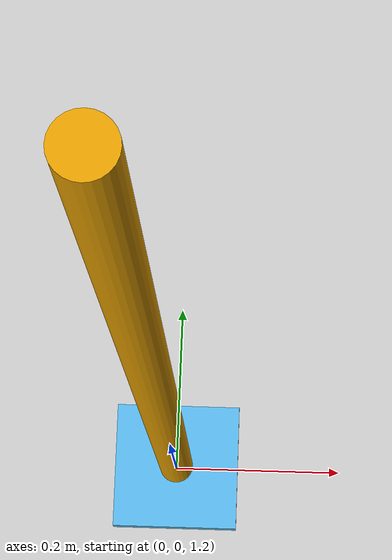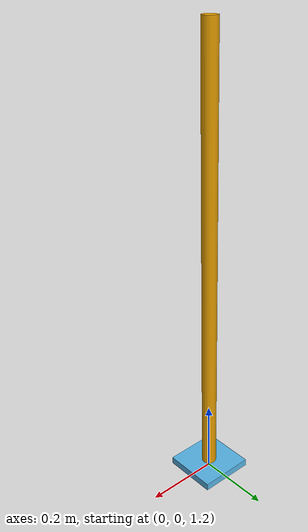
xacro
<?xml version="1.0"?>
<robot name="vertical_stick"
       xmlns:xi="http://www.w3.org/2001/XInclude"
       xmlns:gazebo="http://playerstage.sourceforge.net/gazebo/xmlschema/#gz"
       xmlns:model="http://playerstage.sourceforge.net/gazebo/xmlschema/#model"
       xmlns:sensor="http://playerstage.sourceforge.net/gazebo/xmlschema/#sensor"
       xmlns:body="http://playerstage.sourceforge.net/gazebo/xmlschema/#body"
       xmlns:geom="http://playerstage.sourceforge.net/gazebo/xmlschema/#geom"
       xmlns:joint="http://playerstage.sourceforge.net/gazebo/xmlschema/#joint"
       xmlns:interface="http://playerstage.sourceforge.net/gazebo/xmlschema/#interface"
       xmlns:rendering="http://playerstage.sourceforge.net/gazebo/xmlschema/#rendering"
       xmlns:renderable="http://playerstage.sourceforge.net/gazebo/xmlschema/#renderable"
       xmlns:controller="http://playerstage.sourceforge.net/gazebo/xmlschema/#controller"
       xmlns:physics="http://playerstage.sourceforge.net/gazebo/xmlschema/#physics">

  <xacro:property name="vertical_stick_z" value="0.0" />
  <xacro:property name="vertical_stick_height" value="0.55" />

  <xacro:property name="vertical_stick_x" value="0.0" />
  <xacro:property name="vertical_stick_y" value="0.0" />

  <xacro:property name="vertical_stick_height"      value="1.2" />
  <xacro:property name="vertical_stick_radius"      value="0.02" />
  <xacro:property name="vertical_stick_base_height" value="0.02" />
  <xacro:property name="vertical_stick_base_width"  value="0.15" />
  <xacro:property name="vertical_stick_mass"        value="0.2" />
  <xacro:property name="vertical_stick_mu"          value="500.0" />
  <joint name="vertical_stick_joint" type="fixed" >
    <parent link="vertical_stick_base_link" />
    <origin xyz="${vertical_stick_x} ${vertical_stick_y} ${vertical_stick_z+vertical_stick_height+vertical_stick_base_height}" rpy="0 0 0" />
    <child link="vertical_stick_link" />
  </joint>
  <link name="vertical_stick_link">
    <inertial>
      <mass value="${vertical_stick_mass/2.0}" />
      <origin xyz="0 0 ${vertical_stick_height/2}" />
      <inertia ixx="${vertical_stick_mass/20.0}" ixy="0"  ixz="0"
               iyy="${vertical_stick_mass/20.0}" iyz="0"
               izz="${vertical_stick_mass/200.}" />
    </inertial>
    <visual>
      <origin xyz="0.0 0.0 ${vertical_stick_height/2}" rpy="0 0 0" />
      <geometry>
        <cylinder radius="${vertical_stick_radius}" length="${vertical_stick_height}" />
      </geometry>
    </visual>
    <collision>
      <origin xyz="0.0 0.0 ${vertical_stick_height/2}" rpy="0.0 0.0 0.0" />
      <geometry>
        <cylinder radius="${vertical_stick_radius}" length="${vertical_stick_height}" />
      </geometry>
    </collision>
  </link>
  <gazebo reference="vertical_stick_link">
    <material>Gazebo/BumpyMetal</material>
    <mu1>${vertical_stick_mu}</mu1>
    <mu2>${vertical_stick_mu}</mu2>
    <kp>100000000.0</kp>
    <kd>1.0</kd>
    <selfCollide>true</selfCollide>
    <turnGravityOff>false</turnGravityOff>
    <dampingFactor>0.001</dampingFactor>
  </gazebo>

  <link name="vertical_stick_base_link">
    <inertial>
      <mass value="${vertical_stick_mass/2.0}" />
      <origin xyz="${vertical_stick_x} ${vertical_stick_y} ${vertical_stick_z+vertical_stick_height+vertical_stick_base_height/2}" rpy="0 0 0" />
      <inertia ixx="${vertical_stick_mass/20.0}" ixy="0"  ixz="0"
               iyy="${vertical_stick_mass/20.0}" iyz="0"
               izz="${vertical_stick_mass/200.}" />
    </inertial>
    <visual>
      <origin xyz="${vertical_stick_x} ${vertical_stick_y} ${vertical_stick_z+vertical_stick_height+vertical_stick_base_height/2}" rpy="0 0 0" />
      <geometry>
        <box size="${vertical_stick_base_width} ${vertical_stick_base_width} ${vertical_stick_base_height}" />
      </geometry>
    </visual>
    <collision>
      <origin xyz="${vertical_stick_x} ${vertical_stick_y} ${vertical_stick_z+vertical_stick_height+vertical_stick_base_height/2}" rpy="0 0 0" />
      <geometry>
        <box size="${vertical_stick_base_width} ${vertical_stick_base_width} ${vertical_stick_base_height}" />
      </geometry>
    </collision>
  </link>
  <gazebo reference="vertical_stick_base_link">
    <material>Gazebo/RustyBarrel</material>
    <mu1>0.1</mu1>
    <mu2>0.1</mu2>
    <kp>100000000.0</kp>
    <kd>1.0</kd>
    <selfCollide>true</selfCollide>
    <turnGravityOff>false</turnGravityOff>
    <dampingFactor>0.001</dampingFactor>
  </gazebo>
  <gazebo>
    <canonicalBody>vertical_stick_base_link</canonicalBody>
  </gazebo>

</robot>
